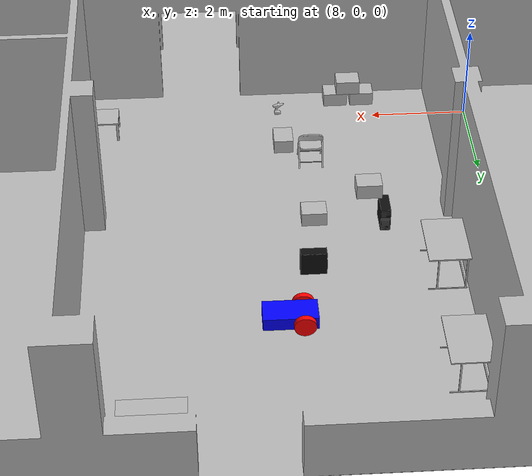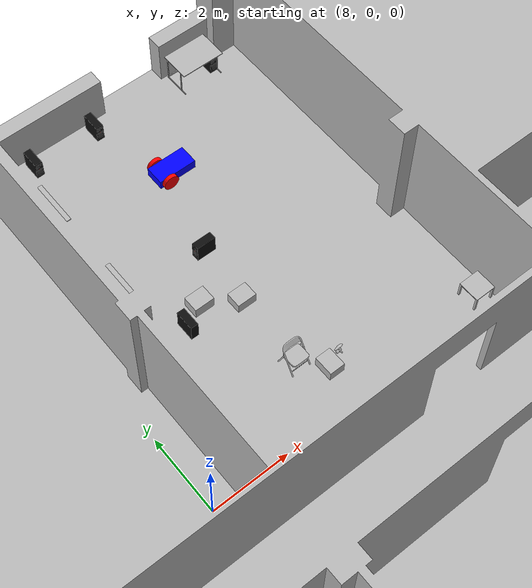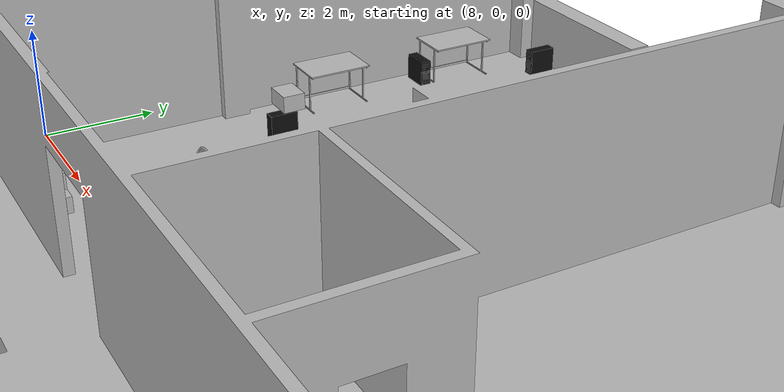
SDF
<sdf version="1.8">
 <world name="sensor_world">
  <physics name="1ms" type="ignored">
   <max_step_size>0.001</max_step_size>
   <real_time_factor>1.0</real_time_factor>
  </physics>
  <plugin filename="gz-sim-physics-system" name="gz::sim::systems::Physics"/>
  <plugin filename="gz-sim-user-commands-system" name="gz::sim::systems::UserCommands"/>
  <plugin filename="gz-sim-scene-broadcaster-system" name="gz::sim::systems::SceneBroadcaster"/>
  <plugin filename="gz-sim-imu-system" name="gz::sim::systems::Imu"/>
  <plugin filename="gz-sim-sensors-system" name="gz::sim::systems::Sensors">
   <render_engine>ogre2</render_engine>
  </plugin>
  <plugin filename="gz-sim-contact-system" name="gz::sim::systems::Contact"/>
  <light type="directional" name="sun">
   <pose>0 0 10 0 0 0</pose>
   <diffuse>0.8 0.8 0.8 1</diffuse>
   <specular>0.2 0.2 0.2 1</specular>
   <attenuation>
    <range>1000</range>
    <constant>0.9</constant>
    <linear>0.01</linear>
    <quadratic>0.001</quadratic>
   </attenuation>
   <direction>-0.5 0.1 -0.9</direction>
  </light>
  <model name="walls_01"><include><uri>model://models/walls</uri></include><pose>-20 -10 0 0 0 0</pose></model>
  <model name="computer_case_01">
   <include><uri>model://models/computer_case</uri></include>
   <pose>9.945 9.15 0 0 0 0</pose>
  </model>
  <model name="table_120_01">
   <include><uri>model://models/table_120</uri></include>
   <pose>9.195 7.859 0 0 0 1.5708</pose>
  </model>
  <model name="computer_case_02">
   <include><uri>model://models/computer_case</uri></include>
   <pose>9.45 7.1 0 0 0 1.5708</pose>
  </model>
  <model name="table_120_02">
   <include><uri>model://models/table_120</uri></include>
   <pose>9.195 5.158 0 0 0 1.5708</pose>
  </model>
  <model name="computer_case_03">
   <include><uri>model://models/computer_case</uri></include>
   <pose>11.697 9.15 0 0 0 0</pose>
  </model>
  <model name="table_120_04">
   <include><uri>model://models/table_120</uri></include>
   <pose>14.7 9.360 0 0 0 0</pose>
  </model>
  <model name="computer_case_04">
   <include><uri>model://models/computer_case</uri></include>
   <pose>15.145 9.120 0 0 0 0</pose>
  </model>
  <model name="table_small_01">
   <include><uri>model://models/table_small</uri></include>
   <pose>15.45 0.6 0 0 0 -1.5708</pose>
  </model>
  <model name="foldable_chair_01">
   <include><uri>model://models/foldable_chair</uri></include>
   <pose>11.47 1.5 0 0 0 0</pose>
  </model>
  <model name="drill_01">
   <include><uri>model://models/drill</uri></include>
   <pose>12.1 0.9 0.76 0 0 1.6708</pose>
  </model>
  <model name="cardboard_box_01">
   <include><uri>model://models/cardboard_box</uri></include>
   <pose>12 1.0 0 0 0 1.5708</pose>
  </model>
  <model name="cardboard_box_02">
   <include><uri>model://models/cardboard_box</uri></include>
   <pose>10.77 -0.6 0 0 0 0</pose>
  </model>
  <model name="cardboard_box_03">
   <include><uri>model://models/cardboard_box</uri></include>
   <pose>10.2 -0.6 0 0 0 0</pose>
  </model>
  <model name="cardboard_box_04">
   <include><uri>model://models/cardboard_box</uri></include>
   <pose>10.5 -0.6 0.3 0 0 0</pose>
  </model>
  <model name="cardboard_box_06">
   <include><uri>model://models/cardboard_box</uri></include>
   <pose>10.5 3.65 0.76 0 0 0</pose>
  </model>
  <model name="computer_case_06">
   <include><uri>model://models/computer_case</uri></include>
   <pose>10.17 3.95 0 0 0 3.14159</pose>
  </model>
  <model name="computer_case_05">
   <include><uri>model://models/computer_case</uri></include>
   <pose>11.4 5.05  0 0 0 -1.5708</pose>
  </model>
  <model name="cardboard_box_05">
   <include><uri>model://models/cardboard_box</uri></include>
   <pose>11.55 3.5  0 0 0 0</pose>
  </model>
  <model name="vehicle_blue" canonical_link="chassis">
   <pose relative_to="world">12 7 0.5 0 0 0</pose>
   <frame name="lidar_frame" attached_to="chassis"><pose>0.4 0 0.25 0 0 0</pose></frame>
   <link name="chassis">
    <pose relative_to="__model__">0.25 0 0.2 0 0 0</pose>
    <inertial>
     <mass>0.2859875</mass>
     <inertia>
      <ixx>0.0157705</ixx>
      <ixy>0</ixy>
      <ixz>0</ixz>
      <iyy>0.0521895</iyy>
      <iyz>0</iyz>
      <izz>0.0602535</izz>
     </inertia>
    </inertial>
    <visual name="visual">
     <geometry><box><size>1.0 0.5 0.25</size></box></geometry>
     <material>
      <ambient>0.0 0.0 1.0 1</ambient>
      <diffuse>0.0 0.0 1.0 1</diffuse>
      <specular>0.0 0.0 1.0 1</specular>
     </material>
    </visual>
    <collision name="collision"><geometry><box><size>1.0 0.5 0.25</size></box></geometry></collision>
    <sensor name="imu_sensor" type="imu">
     <always_on>1</always_on>
     <update_rate>1</update_rate>
     <visualize>true</visualize>
     <topic>imu</topic>
    </sensor>
    <sensor name="gpu_lidar" type="gpu_lidar">
     <pose relative_to="lidar_frame">0 0 0 0 0 0</pose>
     <topic>lidar</topic>
     <update_rate>10</update_rate>
     <ray>
      <scan>
       <horizontal>
        <samples>640</samples>
        <resolution>1</resolution>
        <min_angle>-1.396263</min_angle>
        <max_angle>1.396263</max_angle>
       </horizontal>
       <vertical>
        <samples>1</samples>
        <resolution>0.01</resolution>
        <min_angle>0</min_angle>
        <max_angle>0</max_angle>
       </vertical>
      </scan>
      <range><min>0.04</min><max>0.6</max><resolution>0.01</resolution></range>
     </ray>
     <always_on>1</always_on>
     <visualize>true</visualize>
    </sensor>
   </link>
   <link name="left_wheel">
    <pose relative_to="chassis">-0.25 0.3 0 -1.5707 0 0</pose>
    <inertial>
     <mass>1</mass>
     <inertia>
      <ixx>0.03645825</ixx>
      <ixy>0</ixy>
      <ixz>0</ixz>
      <iyy>0.03645825</iyy>
      <iyz>0</iyz>
      <izz>0.03125</izz>
     </inertia>
    </inertial>
    <visual name="visual">
     <geometry><cylinder><radius>0.2</radius><length>0.1</length></cylinder></geometry>
     <material>
      <ambient>1.0 0.0 0.0 1</ambient>
      <diffuse>1.0 0.0 0.0 1</diffuse>
      <specular>1.0 0.0 0.0 1</specular>
     </material>
    </visual>
    <collision name="collision">
     <geometry><cylinder><radius>0.2</radius><length>0.1</length></cylinder></geometry>
    </collision>
   </link>
   <link name="right_wheel">
    <pose relative_to="chassis">-0.25 -0.3 0 -1.5707 0 0</pose>
    <inertial>
     <mass>0.5</mass>
     <inertia>
      <ixx>0.03645825</ixx>
      <ixy>0</ixy>
      <ixz>0</ixz>
      <iyy>0.03645825</iyy>
      <iyz>0</iyz>
      <izz>0.03125</izz>
     </inertia>
    </inertial>
    <visual name="visual">
     <geometry><cylinder><radius>0.2</radius><length>0.1</length></cylinder></geometry>
     <material>
      <ambient>1.0 0.0 0.0 1</ambient>
      <diffuse>1.0 0.0 0.0 1</diffuse>
      <specular>1.0 0.0 0.0 1</specular>
     </material>
    </visual>
    <collision name="collision">
     <geometry><cylinder><radius>0.2</radius><length>0.1</length></cylinder></geometry>
    </collision>
   </link>
   <frame name="caster_frame" attached_to="chassis"><pose>0.4 0 -0.1 0 0 0</pose></frame>
   <link name="caster">
    <pose relative_to="caster_frame"/>
    <inertial>
     <mass>0.5</mass>
     <inertia><ixx>0.0125</ixx><ixy>0</ixy><ixz>0</ixz><iyy>0.0125</iyy><iyz>0</iyz><izz>0.0125</izz></inertia>
    </inertial>
    <visual name="visual">
     <geometry><sphere><radius>0.1</radius></sphere></geometry>
     <material>
      <ambient>0.0 1 0.0 1</ambient>
      <diffuse>0.0 1 0.0 1</diffuse>
      <specular>0.0 1 0.0 1</specular>
     </material>
    </visual>
    <collision name="collision"><geometry><sphere><radius>0.1</radius></sphere></geometry></collision>
   </link>
   <joint name="left_wheel_joint" type="revolute">
    <pose relative_to="left_wheel"/>
    <parent>chassis</parent>
    <child>left_wheel</child>
    <axis>
     <xyz expressed_in="__model__">0 1 0</xyz>
     <limit><lower>-1.79769e+308</lower><upper>1.79769e+308</upper></limit>
    </axis>
   </joint>
   <joint name="right_wheel_joint" type="revolute">
    <pose relative_to="right_wheel"/>
    <parent>chassis</parent>
    <child>right_wheel</child>
    <axis>
     <xyz expressed_in="__model__">0 1 0</xyz>
     <limit><lower>-1.79769e+308</lower><upper>1.79769e+308</upper></limit>
    </axis>
   </joint>
   <joint name="caster_wheel" type="ball"><parent>chassis</parent><child>caster</child></joint>
   <plugin filename="gz-sim-diff-drive-system" name="gz::sim::systems::DiffDrive">
    <left_joint>left_wheel_joint</left_joint>
    <right_joint>right_wheel_joint</right_joint>
    <wheel_separation>0.6</wheel_separation>
    <wheel_radius>0.2</wheel_radius>
    <odom_publish_frequency>1</odom_publish_frequency>
    <topic>cmd_vel</topic>
   </plugin>
  </model>
  <plugin filename="gz-sim-triggered-publisher-system" name="gz::sim::systems::TriggeredPublisher">
   <input type="gz.msgs.Int32" topic="/keyboard/keypress"><match field="data">16777234</match></input>
   <output type="gz.msgs.Twist" topic="/cmd_vel">linear: {x: 0.0}, angular: {z: 0.5}</output>
  </plugin>
  <plugin filename="gz-sim-triggered-publisher-system" name="gz::sim::systems::TriggeredPublisher">
   <input type="gz.msgs.Int32" topic="/keyboard/keypress"><match field="data">16777235</match></input>
   <output type="gz.msgs.Twist" topic="/cmd_vel">linear: {x: 0.5}, angular: {z: 0.0}</output>
  </plugin>
  <plugin filename="gz-sim-triggered-publisher-system" name="gz::sim::systems::TriggeredPublisher">
   <input type="gz.msgs.Int32" topic="/keyboard/keypress"><match field="data">16777236</match></input>
   <output type="gz.msgs.Twist" topic="/cmd_vel">linear: {x: 0.0}, angular: {z: -0.5}</output>
  </plugin>
  <plugin filename="gz-sim-triggered-publisher-system" name="gz::sim::systems::TriggeredPublisher">
   <input type="gz.msgs.Int32" topic="/keyboard/keypress"><match field="data">16777237</match></input>
   <output type="gz.msgs.Twist" topic="/cmd_vel">linear: {x: -0.5}, angular: {z: 0.0}</output>
  </plugin>
  <plugin filename="gz-sim-triggered-publisher-system" name="gz::sim::systems::TriggeredPublisher">
   <input type="gz.msgs.Int32" topic="/keyboard/keypress"><match field="data">16777249</match></input>
   <output type="gz.msgs.Twist" topic="/cmd_vel">linear: {x: 0}, angular: {z: 0}</output>
  </plugin>
  <plugin filename="gz-sim-triggered-publisher-system" name="gz::sim::systems::TriggeredPublisher">
   <input type="gz.msgs.Boolean" topic="/wall/touched"><match>data: true</match></input>
   <output type="gz.msgs.Twist" topic="/cmd_vel">linear: {x: 0.0}, angular: {z: 0.0}</output>
  </plugin>
  <plugin filename="gz-sim-triggered-publisher-system" name="gz::sim::systems::TriggeredPublisher">
   <input type="gz.msgs.Boolean" topic="/storage_90/touched"><match>data: true</match></input>
   <output type="gz.msgs.Twist" topic="/cmd_vel">linear: {x: 0.0}, angular: {z: 0.0}</output>
  </plugin>
  <plugin filename="gz-sim-triggered-publisher-system" name="gz::sim::systems::TriggeredPublisher">
   <input type="gz.msgs.Boolean" topic="/office_chair/touched"><match>data: true</match></input>
   <output type="gz.msgs.Twist" topic="/cmd_vel">linear: {x: 0.0}, angular: {z: 0.0}</output>
  </plugin>
 </world>
</sdf>

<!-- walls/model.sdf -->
<sdf version="1.6">
  <model name='walls'>
    <static>true</static>
    <link name="body">

        <visual name="visual">
          <geometry>
            <mesh><uri>model://models/walls/meshes/no_roof_UAMT.dae</uri></mesh>
          </geometry>
        </visual>

        <collision name="collision">
          <geometry>
            <mesh><uri>model://models/walls/meshes/no_roof_UAMT.dae</uri></mesh>
          </geometry>
        </collision>
 <sensor name='sensor_contact' type='contact'>
                    <contact>
                        <collision>collision</collision>
                    </contact>
                </sensor>

    </link>

    <plugin filename="gz-sim-touchplugin-system"
                    name="gz::sim::systems::TouchPlugin">
                <target>vehicle_blue</target>
                <namespace>wall</namespace>
                <time>0.001</time>
                <enabled>true</enabled>
            </plugin>

  </model>
</sdf>

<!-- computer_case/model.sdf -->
<sdf version="1.6">
  <model name='computer_case'>
    <static>true</static>
    <link name="body">

        <visual name="visual">
          <geometry>
            <mesh><uri>model://models/computer_case/meshes/computer_case.dae</uri></mesh>
          </geometry>
        </visual>

        <collision name="collision">
          <geometry>
            <mesh><uri>model://models/computer_case/meshes/computer_case.dae</uri></mesh>
          </geometry>
        </collision>

    </link>
  </model>
</sdf>

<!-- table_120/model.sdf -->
<sdf version="1.6">
  <model name='table_120'>
    <static>true</static>
    <link name="body">

        <visual name="visual">
          <geometry>
            <mesh><uri>model://models/table_120/meshes/table_120.dae</uri></mesh>
          </geometry>
        </visual>

        <collision name="collision">
          <geometry>
            <mesh><uri>model://models/table_120/meshes/table_120.dae</uri></mesh>
          </geometry>
        </collision>

    </link>
  </model>
</sdf>

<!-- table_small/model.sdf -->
<sdf version="1.6">
  <model name='table_small'>
    <static>true</static>
    <link name="body">

        <visual name="visual">
          <geometry>
            <mesh><uri>model://models/table_small/meshes/table_small.dae</uri></mesh>
          </geometry>
        </visual>

        <collision name="collision">
          <geometry>
            <mesh><uri>model://models/table_small/meshes/table_small.dae</uri></mesh>
          </geometry>
        </collision>

    </link>
  </model>
</sdf>

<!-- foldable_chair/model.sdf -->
<sdf version="1.6">
  <model name="foldable_chair">
    <static>true</static>
    <link name="base_link">
      <visual name="visual">
        <geometry>
          <mesh>
            <scale>0.1 0.1 0.1</scale>
            <uri>model://models/foldable_chair/meshes/foldable_chair.dae</uri>
          </mesh>
        </geometry>
      </visual>
      <collision name="collision">
        <pose>0 0.05 0.4 0 0 0</pose>
        <geometry>
          <box>
            <size>0.5 0.5 0.8</size>
          </box>
        </geometry>
      </collision>
    </link>
  </model>
</sdf>

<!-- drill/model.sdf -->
<sdf version="1.5">
  <model name="drill">
    <static>true</static>
    <link name="link">
      <inertial>
        <pose>-0.00637 -0.008 0.13254 0 0 0</pose>
        <inertia>
          <ixx>0.01331127</ixx>
          <ixy>-0.00030365</ixy>
          <ixz>-0.00034148</ixz>
          <iyy>0.01157659</iyy>
          <iyz>0.00088073</iyz>
          <izz>0.00378028</izz>
        </inertia>
        <mass>1.50251902</mass>
      </inertial>
      <collision name="collision">
        <pose>0 0 -0.09 0 0 0</pose>
        <geometry>
          <mesh>
            <uri>model://models/drill/meshes/cordless drill.stl</uri>
          </mesh>
        </geometry>
        <surface>
          <contact>
            <ode>
              <max_vel>0.1</max_vel>
              <min_depth>0.001</min_depth>
            </ode>
          </contact>
        </surface>
      </collision>
      <visual name="visual">
        <pose>0 0 -0.09 0 0 0</pose>
        <geometry>
          <mesh>
            <uri>model://models/drill/meshes/cordless drill.dae</uri>
          </mesh>
        </geometry>
      </visual>
    </link>
  </model>
</sdf>

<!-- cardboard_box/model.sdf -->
<sdf version="1.6">
  <model name="cardboard_box">
    <pose>0 0 0.15 0 0 0</pose>
      <static>true</static>
    <link name="link">
      <inertial>
        <mass>2</mass>
        <inertia>
          <ixx>0.041666667</ixx>
          <ixy>0</ixy>
          <ixz>0</ixz>
          <iyy>0.056666667</iyy>
          <iyz>0</iyz>
          <izz>0.068333333</izz>
        </inertia>
      </inertial>
      <collision name="collision">
        <geometry>
          <box>
            <size>0.5 0.4 0.3</size>
          </box>
        </geometry>
        <surface>
          <friction>
            <ode>
              <mu>1.0</mu>
              <mu2>1.0</mu2>
            </ode>
          </friction>
          <contact>
            <ode>
              <kp>10000000.0</kp>
              <kd>1.0</kd>
              <min_depth>0.001</min_depth>
              <max_vel>0.1</max_vel>
            </ode>
          </contact>
        </surface>
      </collision>
      <visual name="visual">
        <pose>0 0 -0.15 0 0 0</pose>
        <geometry>
          <mesh>
            <uri>model://models/cardboard_box/meshes/cardboard_box.dae</uri>
            <scale>1.25931896 1.007455168 0.755591376</scale>
          </mesh>
        </geometry>
      </visual>
    </link>
  </model>
</sdf>
